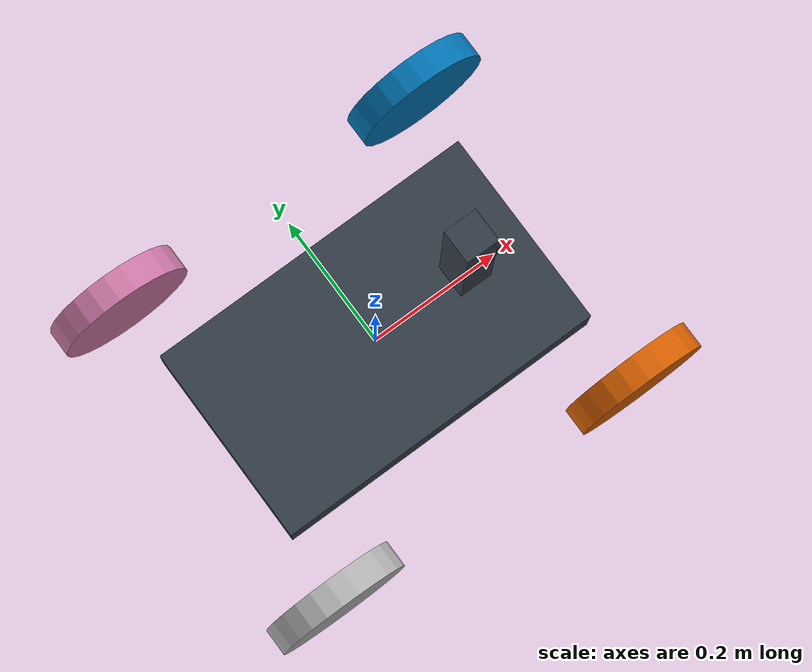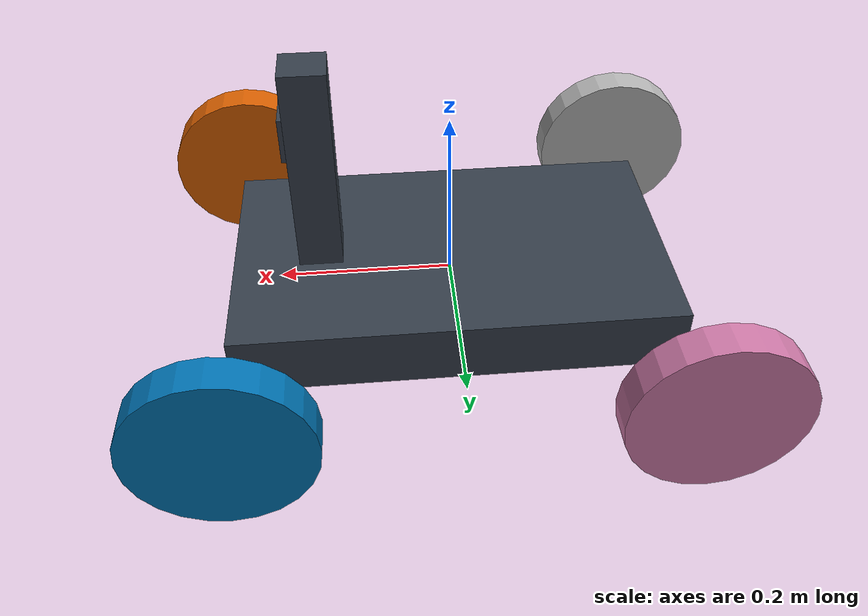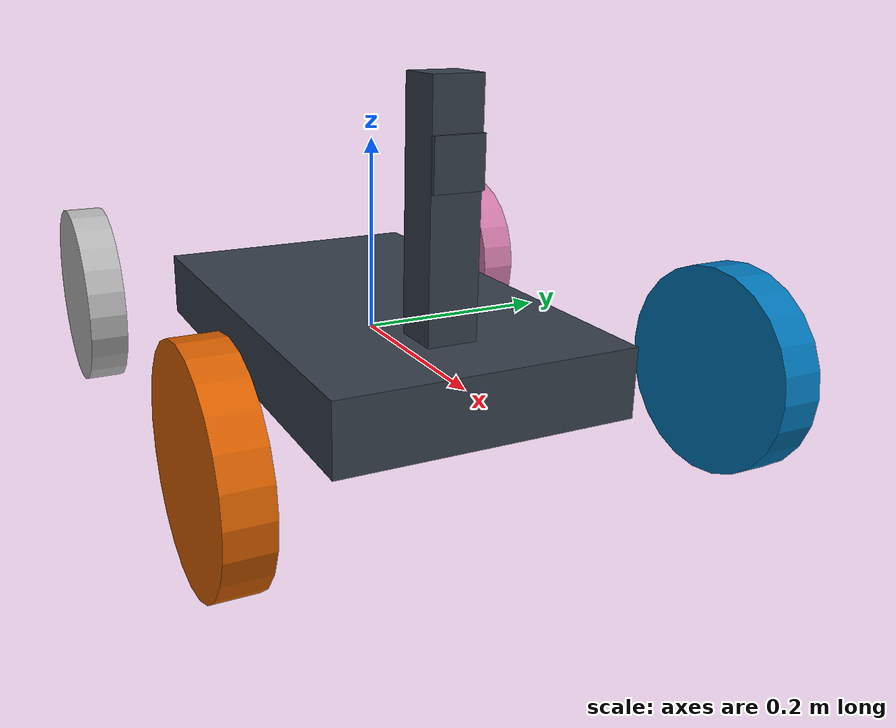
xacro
<?xml version="1.0" ?>
<robot name="m2wr" xmlns:xacro="http://www.ros.org/wiki/xacro">

  <xacro:include filename="$(find m2wr_description)/urdf/materials.xacro" />
  <xacro:include filename="$(find m2wr_description)/urdf/m2wr.gazebo" />
  <xacro:include filename="$(find m2wr_description)/urdf/macros.xacro" />

  <link name="dummy">
     </link>

  <link name="link_chassis">
    <!-- pose and inertial -->
    <pose>0 0 0.1 0 0 0</pose>
    <inertial>

      <mass value="5"/>
      <origin rpy="0 0 0" xyz="0 0 0.1"/>
      <inertia ixx="0.0395416666667" ixy="0" ixz="0" iyy="0.106208333333" iyz="0" izz="0.106208333333"/>
    </inertial>
    <!-- body -->
    <collision name="collision_chassis">
      <geometry>
        <box size="0.5 0.3 0.07"/>
      </geometry>
    </collision>
    <visual>
      <origin rpy="0 0 0" xyz="0 0 0"/>
      <geometry>
        <box size="0.5 0.3 0.07"/>
      </geometry>
      <material name="blue"/>
    </visual>
  </link>
  <joint name="dummy_joint" type="fixed">
    <parent link="dummy"/>
    <child link="link_chassis"/>
  </joint>
  <link name="camera_support">
    <inertial>
      <mass value="1"/>
      <origin rpy="0 0 0" xyz="0 0 -0.05"/>
      <inertia ixx="0.005416667" ixy="0" ixz="0" iyy="0.005416667" iyz="0" izz="0.000416667"/>
    </inertial>
    <!-- body -->
    <collision name="camera_support_collision">
      <geometry>
        <box size="0.05 0.05 0.25"/>
      </geometry>
    </collision>
    <visual>
      <origin rpy="0 0 0" xyz="0 0 -0.05"/>
      <geometry>
        <box size="0.05 0.05 0.25"/>
      </geometry>
      <material name="blue"/>
    </visual>
  </link>
  <joint name="joint_camera_support" type="fixed">
    <origin xyz="0.15 0 0.2" rpy="0 0 0" />
    <parent link="link_chassis" />
    <child link="camera_support"/>
  </joint>
  <link name="camera_box">
    <inertial>
      <mass value="0.5"/>
      <origin rpy="0 0 0" xyz="0 0 0"/>
      <inertia ixx="0.000002083" ixy="0" ixz="0" iyy="0.000002083" iyz="0" izz="0.000002083"/>
    </inertial>
    <!-- body -->
    <collision name="camera_box_collision">
      <geometry>
        <box size="0.005 0.05 0.05"/>
      </geometry>
    </collision>
    <visual>
      <origin rpy="0 0 0" xyz="0 0 0"/>
      <geometry>
        <box size="0.005 0.05 0.05"/>
      </geometry>
      <material name="blue"/>
    </visual>
  </link>
  <joint name="joint_camera_box" type="fixed">
    <origin xyz="0.0275 0 0" rpy="0 0 0" />
    <parent link="camera_support" />
    <child link="camera_box"/>
  </joint>

  <xacro:link_wheel name="link_right_front_wheel" />
 <xacro:joint_wheel name="joint_right_wheel" child="link_right_front_wheel" origin_xyz="0.25 0.25 0" />
 <xacro:link_wheel name="link_left_front_wheel" />
 <xacro:joint_wheel name="joint_left_wheel" child="link_left_front_wheel" origin_xyz="0.25 -0.25 0" />
 <xacro:link_wheel name="link_right_back_wheel" />
<xacro:joint_wheel name="joint_right_back_wheel" child="link_right_back_wheel" origin_xyz="-0.25 0.25 0" />
<xacro:link_wheel name="link_left_back_wheel" />
<xacro:joint_wheel name="joint_left_back_wheel" child="link_left_back_wheel" origin_xyz="-0.25 -0.25 0" />

</robot>

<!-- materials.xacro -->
<robot xmlns:xacro="http://www.ros.org/wiki/xacro">
  <material name="black">
    <color rgba="0.0 0.0 0.0 1.0"/>
  </material>
  <material name="blue">
    <color rgba="0.203125 0.23828125 0.28515625 1.0"/>
  </material>
  <material name="green">
    <color rgba="0.0 0.8 0.0 1.0"/>
  </material>
  <material name="grey">
    <color rgba="0.2 0.2 0.2 1.0"/>
  </material>
  <material name="orange">
    <color rgba="1.0 0.423529411765 0.0392156862745 1.0"/>
  </material>
  <material name="brown">
    <color rgba="0.870588235294 0.811764705882 0.764705882353 1.0"/>
  </material>
  <material name="red">
    <color rgba="0.80078125 0.12890625 0.1328125 1.0"/>
  </material>
  <material name="white">
    <color rgba="1.0 1.0 1.0 1.0"/>
  </material>
</robot>

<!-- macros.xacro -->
<robot xmlns:xacro="http://www.ros.org/wiki/xacro">
    <xacro:macro name="link_wheel" params="name">
        <link name="${name}">
            <inertial>
              <mass value="0.2"/>
              <origin rpy="0 1.5707 1.5707" xyz="0 0 0"/>
              <inertia ixx="0.000526666666667" ixy="0" ixz="0" iyy="0.000526666666667" iyz="0" izz="0.001"/>
            </inertial>
            <collision name="link_right_wheel_collision">
              <origin rpy="0 1.5707 1.5707" xyz="0 0 0"/>
              <geometry>
                <cylinder length="0.04" radius="0.1"/>
              </geometry>
              <surface>
                <friction>
                  <ode>
                    <mu>0.1</mu>
                    <mu2>0.1</mu2>
                    <slip1>0.1</slip1>
                    <slip2>0</slip2>
                  </ode>
                </friction>
              </surface>
            </collision>
            <visual name="${name}_visual">
              <origin rpy="0 1.5707 1.5707" xyz="0 0 0"/>
              <geometry>
                <cylinder length="0.04" radius="0.1"/>
              </geometry>
            </visual>
        </link>
    </xacro:macro>
    <xacro:macro name="joint_wheel" params="name child origin_xyz">
      <joint name="${name}" type="continuous">
        <origin rpy="0 0 0" xyz="${origin_xyz}"/>
        <child link="${child}"/>
        <parent link="link_chassis"/>
        <axis rpy="0 0 0" xyz="0 1 0"/>
        <limit effort="10000" velocity="1000"/>
        <joint_properties damping="1.0" friction="1.0"/>
      </joint>
    </xacro:macro>
    <xacro:macro name="cylinder_inertia" params="mass r l">
      <inertia  ixx="${mass*(3*r*r+l*l)/12}" ixy = "0" ixz = "0"
                iyy="${mass*(3*r*r+l*l)/12}" iyz = "0"
                izz="${mass*(r*r)/2}" />

    </xacro:macro>
</robot>
